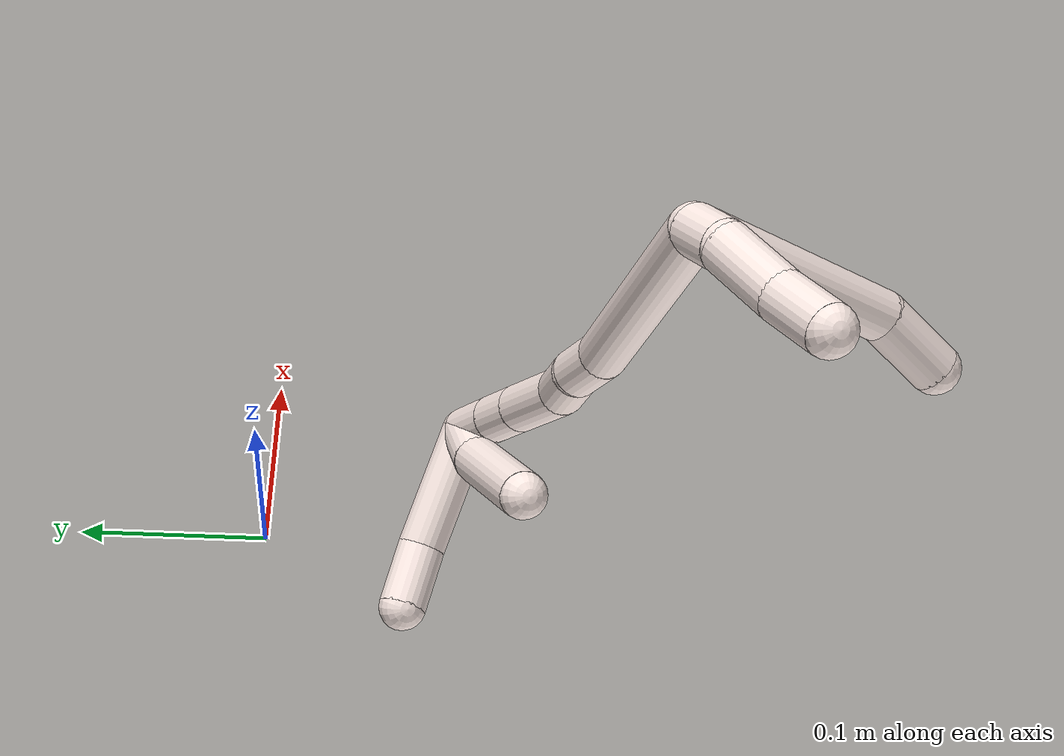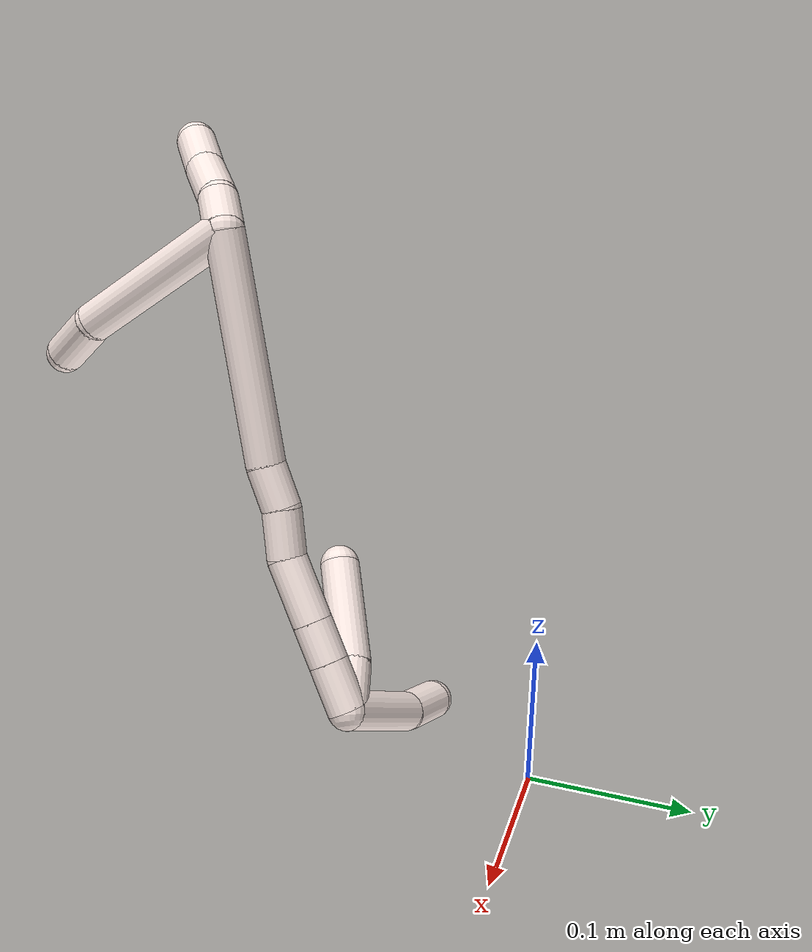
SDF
<sdf version="1.7">
 <world name="default">
  <model name="11">
   <static>0</static>
   <link name="11">
    <collision name="collision-cylinder-e_1_2_8">
     <pose>-0.051986 0.014855 0.012905 -0.855506 -1.20895 0.610147</pose>
     <geometry><cylinder><radius>0.0125</radius><length>0.11117</length></cylinder></geometry>
     <surface>
      <friction><ode><mu>1.16</mu><mu2>1.16</mu2><slip1>0</slip1><slip2>0</slip2></ode></friction>
      <contact><ode><kp>1e+06</kp><kd>1</kd><max_vel>0</max_vel><min_depth>0.001</min_depth></ode></contact>
     </surface>
    </collision>
    <visual name="visual-cylinder-e_1_2_8">
     <pose>-0.051986 0.014855 0.012905 -0.855506 -1.20895 0.610147</pose>
     <geometry><cylinder><radius>0.0125</radius><length>0.11117</length></cylinder></geometry>
     <material><ambient>1 0.933333 0.909804 1</ambient></material>
    </visual>
    <collision name="collision-cylinder-e_2_8_6">
     <pose>-0.123088 0.028932 0.029112 0.23113 -1.39516 -0.193981</pose>
     <geometry><cylinder><radius>0.0125</radius><length>0.03883</length></cylinder></geometry>
     <surface>
      <friction><ode><mu>1.16</mu><mu2>1.16</mu2><slip1>0</slip1><slip2>0</slip2></ode></friction>
      <contact><ode><kp>1e+06</kp><kd>1</kd><max_vel>0</max_vel><min_depth>0.001</min_depth></ode></contact>
     </surface>
    </collision>
    <visual name="visual-cylinder-e_2_8_6">
     <pose>-0.123088 0.028932 0.029112 0.23113 -1.39516 -0.193981</pose>
     <geometry><cylinder><radius>0.0125</radius><length>0.03883</length></cylinder></geometry>
     <material><ambient>1 0.933333 0.909804 1</ambient></material>
    </visual>
    <collision name="collision-cylinder-e_1_2_9">
     <pose>-0.003966 -0.001759 -0.012379 3.00043 -0.307151 -2.28472</pose>
     <geometry><cylinder><radius>0.0125</radius><length>0.026234</length></cylinder></geometry>
     <surface>
      <friction><ode><mu>1.16</mu><mu2>1.16</mu2><slip1>0</slip1><slip2>0</slip2></ode></friction>
      <contact><ode><kp>1e+06</kp><kd>1</kd><max_vel>0</max_vel><min_depth>0.001</min_depth></ode></contact>
     </surface>
    </collision>
    <visual name="visual-cylinder-e_1_2_9">
     <pose>-0.003966 -0.001759 -0.012379 3.00043 -0.307151 -2.28472</pose>
     <geometry><cylinder><radius>0.0125</radius><length>0.026234</length></cylinder></geometry>
     <material><ambient>1 0.933333 0.909804 1</ambient></material>
    </visual>
    <collision name="collision-cylinder-e_2_9_10">
     <pose>-0.019389 -0.008194 -0.040887 2.85945 -0.598702 -2.27905</pose>
     <geometry><cylinder><radius>0.0125</radius><length>0.04066</length></cylinder></geometry>
     <surface>
      <friction><ode><mu>1.16</mu><mu2>1.16</mu2><slip1>0</slip1><slip2>0</slip2></ode></friction>
      <contact><ode><kp>1e+06</kp><kd>1</kd><max_vel>0</max_vel><min_depth>0.001</min_depth></ode></contact>
     </surface>
    </collision>
    <visual name="visual-cylinder-e_2_9_10">
     <pose>-0.019389 -0.008194 -0.040887 2.85945 -0.598702 -2.27905</pose>
     <geometry><cylinder><radius>0.0125</radius><length>0.04066</length></cylinder></geometry>
     <material><ambient>1 0.933333 0.909804 1</ambient></material>
    </visual>
    <collision name="collision-cylinder-e_3_10_5">
     <pose>-0.038518 -0.015733 -0.071403 2.94513 -0.481897 -2.37877</pose>
     <geometry><cylinder><radius>0.0125</radius><length>0.033106</length></cylinder></geometry>
     <surface>
      <friction><ode><mu>1.16</mu><mu2>1.16</mu2><slip1>0</slip1><slip2>0</slip2></ode></friction>
      <contact><ode><kp>1e+06</kp><kd>1</kd><max_vel>0</max_vel><min_depth>0.001</min_depth></ode></contact>
     </surface>
    </collision>
    <visual name="visual-cylinder-e_3_10_5">
     <pose>-0.038518 -0.015733 -0.071403 2.94513 -0.481897 -2.37877</pose>
     <geometry><cylinder><radius>0.0125</radius><length>0.033106</length></cylinder></geometry>
     <material><ambient>1 0.933333 0.909804 1</ambient></material>
    </visual>
    <collision name="collision-cylinder-e_1_2_11">
     <pose>-0.018424 -0.022152 0.065045 0.328239 -0.26196 -0.043626</pose>
     <geometry><cylinder><radius>0.0125</radius><length>0.142281</length></cylinder></geometry>
     <surface>
      <friction><ode><mu>1.16</mu><mu2>1.16</mu2><slip1>0</slip1><slip2>0</slip2></ode></friction>
      <contact><ode><kp>1e+06</kp><kd>1</kd><max_vel>0</max_vel><min_depth>0.001</min_depth></ode></contact>
     </surface>
    </collision>
    <visual name="visual-cylinder-e_1_2_11">
     <pose>-0.018424 -0.022152 0.065045 0.328239 -0.26196 -0.043626</pose>
     <geometry><cylinder><radius>0.0125</radius><length>0.142281</length></cylinder></geometry>
     <material><ambient>1 0.933333 0.909804 1</ambient></material>
    </visual>
    <collision name="collision-cylinder-e_2_11_12">
     <pose>-0.037796 -0.049589 0.143028 0.387858 -0.067785 -0.013318</pose>
     <geometry><cylinder><radius>0.0125</radius><length>0.028018</length></cylinder></geometry>
     <surface>
      <friction><ode><mu>1.16</mu><mu2>1.16</mu2><slip1>0</slip1><slip2>0</slip2></ode></friction>
      <contact><ode><kp>1e+06</kp><kd>1</kd><max_vel>0</max_vel><min_depth>0.001</min_depth></ode></contact>
     </surface>
    </collision>
    <visual name="visual-cylinder-e_2_11_12">
     <pose>-0.037796 -0.049589 0.143028 0.387858 -0.067785 -0.013318</pose>
     <geometry><cylinder><radius>0.0125</radius><length>0.028018</length></cylinder></geometry>
     <material><ambient>1 0.933333 0.909804 1</ambient></material>
    </visual>
    <collision name="collision-cylinder-e_3_12_13">
     <pose>-0.042524 -0.058204 0.170373 0.227064 -0.250243 -0.028681</pose>
     <geometry><cylinder><radius>0.0125</radius><length>0.030522</length></cylinder></geometry>
     <surface>
      <friction><ode><mu>1.16</mu><mu2>1.16</mu2><slip1>0</slip1><slip2>0</slip2></ode></friction>
      <contact><ode><kp>1e+06</kp><kd>1</kd><max_vel>0</max_vel><min_depth>0.001</min_depth></ode></contact>
     </surface>
    </collision>
    <visual name="visual-cylinder-e_3_12_13">
     <pose>-0.042524 -0.058204 0.170373 0.227064 -0.250243 -0.028681</pose>
     <geometry><cylinder><radius>0.0125</radius><length>0.030522</length></cylinder></geometry>
     <material><ambient>1 0.933333 0.909804 1</ambient></material>
    </visual>
    <collision name="collision-cylinder-e_4_13_14">
     <pose>-0.04547 -0.068461 0.204525 0.337465 0.039815 0.006783</pose>
     <geometry><cylinder><radius>0.0125</radius><length>0.041885</length></cylinder></geometry>
     <surface>
      <friction><ode><mu>1.16</mu><mu2>1.16</mu2><slip1>0</slip1><slip2>0</slip2></ode></friction>
      <contact><ode><kp>1e+06</kp><kd>1</kd><max_vel>0</max_vel><min_depth>0.001</min_depth></ode></contact>
     </surface>
    </collision>
    <visual name="visual-cylinder-e_4_13_14">
     <pose>-0.04547 -0.068461 0.204525 0.337465 0.039815 0.006783</pose>
     <geometry><cylinder><radius>0.0125</radius><length>0.041885</length></cylinder></geometry>
     <material><ambient>1 0.933333 0.909804 1</ambient></material>
    </visual>
    <collision name="collision-cylinder-e_5_14_15">
     <pose>-0.044147 -0.079783 0.236642 0.341214 0.037246 0.006417</pose>
     <geometry><cylinder><radius>0.0125</radius><length>0.026275</length></cylinder></geometry>
     <surface>
      <friction><ode><mu>1.16</mu><mu2>1.16</mu2><slip1>0</slip1><slip2>0</slip2></ode></friction>
      <contact><ode><kp>1e+06</kp><kd>1</kd><max_vel>0</max_vel><min_depth>0.001</min_depth></ode></contact>
     </surface>
    </collision>
    <visual name="visual-cylinder-e_5_14_15">
     <pose>-0.044147 -0.079783 0.236642 0.341214 0.037246 0.006417</pose>
     <geometry><cylinder><radius>0.0125</radius><length>0.026275</length></cylinder></geometry>
     <material><ambient>1 0.933333 0.909804 1</ambient></material>
    </visual>
    <collision name="collision-cylinder-e_6_15_1">
     <pose>-0.04319 -0.089442 0.263594 0.346577 0.030192 0.005285</pose>
     <geometry><cylinder><radius>0.0125</radius><length>0.031019</length></cylinder></geometry>
     <surface>
      <friction><ode><mu>1.16</mu><mu2>1.16</mu2><slip1>0</slip1><slip2>0</slip2></ode></friction>
      <contact><ode><kp>1e+06</kp><kd>1</kd><max_vel>0</max_vel><min_depth>0.001</min_depth></ode></contact>
     </surface>
    </collision>
    <visual name="visual-cylinder-e_6_15_1">
     <pose>-0.04319 -0.089442 0.263594 0.346577 0.030192 0.005285</pose>
     <geometry><cylinder><radius>0.0125</radius><length>0.031019</length></cylinder></geometry>
     <material><ambient>1 0.933333 0.909804 1</ambient></material>
    </visual>
    <collision name="collision-cylinder-e_1_1_16">
     <pose>-0.045803 -0.100686 0.263459 2.7557 -0.191601 -0.914197</pose>
     <geometry><cylinder><radius>0.0125</radius><length>0.03236</length></cylinder></geometry>
     <surface>
      <friction><ode><mu>1.16</mu><mu2>1.16</mu2><slip1>0</slip1><slip2>0</slip2></ode></friction>
      <contact><ode><kp>1e+06</kp><kd>1</kd><max_vel>0</max_vel><min_depth>0.001</min_depth></ode></contact>
     </surface>
    </collision>
    <visual name="visual-cylinder-e_1_1_16">
     <pose>-0.045803 -0.100686 0.263459 2.7557 -0.191601 -0.914197</pose>
     <geometry><cylinder><radius>0.0125</radius><length>0.03236</length></cylinder></geometry>
     <material><ambient>1 0.933333 0.909804 1</ambient></material>
    </visual>
    <collision name="collision-cylinder-e_2_16_4">
     <pose>-0.05468 -0.111025 0.21571 3.01036 -0.172244 -1.84042</pose>
     <geometry><cylinder><radius>0.0125</radius><length>0.06764</length></cylinder></geometry>
     <surface>
      <friction><ode><mu>1.16</mu><mu2>1.16</mu2><slip1>0</slip1><slip2>0</slip2></ode></friction>
      <contact><ode><kp>1e+06</kp><kd>1</kd><max_vel>0</max_vel><min_depth>0.001</min_depth></ode></contact>
     </surface>
    </collision>
    <visual name="visual-cylinder-e_2_16_4">
     <pose>-0.05468 -0.111025 0.21571 3.01036 -0.172244 -1.84042</pose>
     <geometry><cylinder><radius>0.0125</radius><length>0.06764</length></cylinder></geometry>
     <material><ambient>1 0.933333 0.909804 1</ambient></material>
    </visual>
    <collision name="collision-cylinder-e_1_1_17">
     <pose>-0.051109 -0.126539 0.277825 1.5818 -0.257625 -0.260444</pose>
     <geometry><cylinder><radius>0.0125</radius><length>0.06584</length></cylinder></geometry>
     <surface>
      <friction><ode><mu>1.16</mu><mu2>1.16</mu2><slip1>0</slip1><slip2>0</slip2></ode></friction>
      <contact><ode><kp>1e+06</kp><kd>1</kd><max_vel>0</max_vel><min_depth>0.001</min_depth></ode></contact>
     </surface>
    </collision>
    <visual name="visual-cylinder-e_1_1_17">
     <pose>-0.051109 -0.126539 0.277825 1.5818 -0.257625 -0.260444</pose>
     <geometry><cylinder><radius>0.0125</radius><length>0.06584</length></cylinder></geometry>
     <material><ambient>1 0.933333 0.909804 1</ambient></material>
    </visual>
    <collision name="collision-cylinder-e_2_17_3">
     <pose>-0.063448 -0.174428 0.2732 1.83094 -0.233454 -0.302775</pose>
     <geometry><cylinder><radius>0.0125</radius><length>0.03416</length></cylinder></geometry>
     <surface>
      <friction><ode><mu>1.16</mu><mu2>1.16</mu2><slip1>0</slip1><slip2>0</slip2></ode></friction>
      <contact><ode><kp>1e+06</kp><kd>1</kd><max_vel>0</max_vel><min_depth>0.001</min_depth></ode></contact>
     </surface>
    </collision>
    <visual name="visual-cylinder-e_2_17_3">
     <pose>-0.063448 -0.174428 0.2732 1.83094 -0.233454 -0.302775</pose>
     <geometry><cylinder><radius>0.0125</radius><length>0.03416</length></cylinder></geometry>
     <material><ambient>1 0.933333 0.909804 1</ambient></material>
    </visual>
    <collision name="collision-sphere-3">
     <pose>-0.067399 -0.190486 0.268926 0 -0 0</pose>
     <geometry><sphere><radius>0.0125</radius></sphere></geometry>
     <surface>
      <friction><ode><mu>1.16</mu><mu2>1.16</mu2><slip1>0</slip1><slip2>0</slip2></ode></friction>
      <contact><ode><kp>1e+06</kp><kd>1</kd><max_vel>0</max_vel><min_depth>0.001</min_depth></ode></contact>
     </surface>
    </collision>
    <visual name="visual-sphere-3">
     <pose>-0.067399 -0.190486 0.268926 0 -0 0</pose>
     <geometry><sphere><radius>0.0125</radius></sphere></geometry>
     <material><ambient>1 0.933333 0.909804 1</ambient></material>
    </visual>
    <collision name="collision-sphere-17">
     <pose>-0.059496 -0.158371 0.277474 0 -0 0</pose>
     <geometry><sphere><radius>0.0125</radius></sphere></geometry>
     <surface>
      <friction><ode><mu>1.16</mu><mu2>1.16</mu2><slip1>0</slip1><slip2>0</slip2></ode></friction>
      <contact><ode><kp>1e+06</kp><kd>1</kd><max_vel>0</max_vel><min_depth>0.001</min_depth></ode></contact>
     </surface>
    </collision>
    <visual name="visual-sphere-17">
     <pose>-0.059496 -0.158371 0.277474 0 -0 0</pose>
     <geometry><sphere><radius>0.0125</radius></sphere></geometry>
     <material><ambient>1 0.933333 0.909804 1</ambient></material>
    </visual>
    <collision name="collision-sphere-4">
     <pose>-0.060477 -0.115385 0.182677 0 -0 0</pose>
     <geometry><sphere><radius>0.0125</radius></sphere></geometry>
     <surface>
      <friction><ode><mu>1.16</mu><mu2>1.16</mu2><slip1>0</slip1><slip2>0</slip2></ode></friction>
      <contact><ode><kp>1e+06</kp><kd>1</kd><max_vel>0</max_vel><min_depth>0.001</min_depth></ode></contact>
     </surface>
    </collision>
    <visual name="visual-sphere-4">
     <pose>-0.060477 -0.115385 0.182677 0 -0 0</pose>
     <geometry><sphere><radius>0.0125</radius></sphere></geometry>
     <material><ambient>1 0.933333 0.909804 1</ambient></material>
    </visual>
    <collision name="collision-sphere-16">
     <pose>-0.048884 -0.106665 0.248744 0 -0 0</pose>
     <geometry><sphere><radius>0.0125</radius></sphere></geometry>
     <surface>
      <friction><ode><mu>1.16</mu><mu2>1.16</mu2><slip1>0</slip1><slip2>0</slip2></ode></friction>
      <contact><ode><kp>1e+06</kp><kd>1</kd><max_vel>0</max_vel><min_depth>0.001</min_depth></ode></contact>
     </surface>
    </collision>
    <visual name="visual-sphere-16">
     <pose>-0.048884 -0.106665 0.248744 0 -0 0</pose>
     <geometry><sphere><radius>0.0125</radius></sphere></geometry>
     <material><ambient>1 0.933333 0.909804 1</ambient></material>
    </visual>
    <collision name="collision-sphere-1">
     <pose>-0.042721 -0.094708 0.278175 0 -0 0</pose>
     <geometry><sphere><radius>0.0125</radius></sphere></geometry>
     <surface>
      <friction><ode><mu>1.16</mu><mu2>1.16</mu2><slip1>0</slip1><slip2>0</slip2></ode></friction>
      <contact><ode><kp>1e+06</kp><kd>1</kd><max_vel>0</max_vel><min_depth>0.001</min_depth></ode></contact>
     </surface>
    </collision>
    <visual name="visual-sphere-1">
     <pose>-0.042721 -0.094708 0.278175 0 -0 0</pose>
     <geometry><sphere><radius>0.0125</radius></sphere></geometry>
     <material><ambient>1 0.933333 0.909804 1</ambient></material>
    </visual>
    <collision name="collision-sphere-15">
     <pose>-0.043658 -0.084176 0.249014 0 -0 0</pose>
     <geometry><sphere><radius>0.0125</radius></sphere></geometry>
     <surface>
      <friction><ode><mu>1.16</mu><mu2>1.16</mu2><slip1>0</slip1><slip2>0</slip2></ode></friction>
      <contact><ode><kp>1e+06</kp><kd>1</kd><max_vel>0</max_vel><min_depth>0.001</min_depth></ode></contact>
     </surface>
    </collision>
    <visual name="visual-sphere-15">
     <pose>-0.043658 -0.084176 0.249014 0 -0 0</pose>
     <geometry><sphere><radius>0.0125</radius></sphere></geometry>
     <material><ambient>1 0.933333 0.909804 1</ambient></material>
    </visual>
    <collision name="collision-sphere-14">
     <pose>-0.044636 -0.07539 0.224271 0 -0 0</pose>
     <geometry><sphere><radius>0.0125</radius></sphere></geometry>
     <surface>
      <friction><ode><mu>1.16</mu><mu2>1.16</mu2><slip1>0</slip1><slip2>0</slip2></ode></friction>
      <contact><ode><kp>1e+06</kp><kd>1</kd><max_vel>0</max_vel><min_depth>0.001</min_depth></ode></contact>
     </surface>
    </collision>
    <visual name="visual-sphere-14">
     <pose>-0.044636 -0.07539 0.224271 0 -0 0</pose>
     <geometry><sphere><radius>0.0125</radius></sphere></geometry>
     <material><ambient>1 0.933333 0.909804 1</ambient></material>
    </visual>
    <collision name="collision-sphere-13">
     <pose>-0.046303 -0.061533 0.18478 0 -0 0</pose>
     <geometry><sphere><radius>0.0125</radius></sphere></geometry>
     <surface>
      <friction><ode><mu>1.16</mu><mu2>1.16</mu2><slip1>0</slip1><slip2>0</slip2></ode></friction>
      <contact><ode><kp>1e+06</kp><kd>1</kd><max_vel>0</max_vel><min_depth>0.001</min_depth></ode></contact>
     </surface>
    </collision>
    <visual name="visual-sphere-13">
     <pose>-0.046303 -0.061533 0.18478 0 -0 0</pose>
     <geometry><sphere><radius>0.0125</radius></sphere></geometry>
     <material><ambient>1 0.933333 0.909804 1</ambient></material>
    </visual>
    <collision name="collision-sphere-12">
     <pose>-0.038745 -0.054875 0.155967 0 -0 0</pose>
     <geometry><sphere><radius>0.0125</radius></sphere></geometry>
     <surface>
      <friction><ode><mu>1.16</mu><mu2>1.16</mu2><slip1>0</slip1><slip2>0</slip2></ode></friction>
      <contact><ode><kp>1e+06</kp><kd>1</kd><max_vel>0</max_vel><min_depth>0.001</min_depth></ode></contact>
     </surface>
    </collision>
    <visual name="visual-sphere-12">
     <pose>-0.038745 -0.054875 0.155967 0 -0 0</pose>
     <geometry><sphere><radius>0.0125</radius></sphere></geometry>
     <material><ambient>1 0.933333 0.909804 1</ambient></material>
    </visual>
    <collision name="collision-sphere-11">
     <pose>-0.036847 -0.044303 0.13009 0 -0 0</pose>
     <geometry><sphere><radius>0.0125</radius></sphere></geometry>
     <surface>
      <friction><ode><mu>1.16</mu><mu2>1.16</mu2><slip1>0</slip1><slip2>0</slip2></ode></friction>
      <contact><ode><kp>1e+06</kp><kd>1</kd><max_vel>0</max_vel><min_depth>0.001</min_depth></ode></contact>
     </surface>
    </collision>
    <visual name="visual-sphere-11">
     <pose>-0.036847 -0.044303 0.13009 0 -0 0</pose>
     <geometry><sphere><radius>0.0125</radius></sphere></geometry>
     <material><ambient>1 0.933333 0.909804 1</ambient></material>
    </visual>
    <collision name="collision-sphere-8">
     <pose>-0.103971 0.029709 0.02581 0 -0 0</pose>
     <geometry><sphere><radius>0.0125</radius></sphere></geometry>
     <surface>
      <friction><ode><mu>1.16</mu><mu2>1.16</mu2><slip1>0</slip1><slip2>0</slip2></ode></friction>
      <contact><ode><kp>1e+06</kp><kd>1</kd><max_vel>0</max_vel><min_depth>0.001</min_depth></ode></contact>
     </surface>
    </collision>
    <visual name="visual-sphere-8">
     <pose>-0.103971 0.029709 0.02581 0 -0 0</pose>
     <geometry><sphere><radius>0.0125</radius></sphere></geometry>
     <material><ambient>1 0.933333 0.909804 1</ambient></material>
    </visual>
    <collision name="collision-sphere-2">
     <geometry><sphere><radius>0.0125</radius></sphere></geometry>
     <surface>
      <friction><ode><mu>1.16</mu><mu2>1.16</mu2><slip1>0</slip1><slip2>0</slip2></ode></friction>
      <contact><ode><kp>1e+06</kp><kd>1</kd><max_vel>0</max_vel><min_depth>0.001</min_depth></ode></contact>
     </surface>
    </collision>
    <visual name="visual-sphere-2">
     <geometry><sphere><radius>0.0125</radius></sphere></geometry>
     <material><ambient>1 0.933333 0.909804 1</ambient></material>
    </visual>
    <collision name="collision-sphere-9">
     <pose>-0.007932 -0.003518 -0.024757 0 -0 0</pose>
     <geometry><sphere><radius>0.0125</radius></sphere></geometry>
     <surface>
      <friction><ode><mu>1.16</mu><mu2>1.16</mu2><slip1>0</slip1><slip2>0</slip2></ode></friction>
      <contact><ode><kp>1e+06</kp><kd>1</kd><max_vel>0</max_vel><min_depth>0.001</min_depth></ode></contact>
     </surface>
    </collision>
    <visual name="visual-sphere-9">
     <pose>-0.007932 -0.003518 -0.024757 0 -0 0</pose>
     <geometry><sphere><radius>0.0125</radius></sphere></geometry>
     <material><ambient>1 0.933333 0.909804 1</ambient></material>
    </visual>
    <collision name="collision-sphere-6">
     <pose>-0.142204 0.028155 0.032415 0 -0 0</pose>
     <geometry><sphere><radius>0.0125</radius></sphere></geometry>
     <surface>
      <friction><ode><mu>1.16</mu><mu2>1.16</mu2><slip1>0</slip1><slip2>0</slip2></ode></friction>
      <contact><ode><kp>1e+06</kp><kd>1</kd><max_vel>0</max_vel><min_depth>0.001</min_depth></ode></contact>
     </surface>
    </collision>
    <visual name="visual-sphere-6">
     <pose>-0.142204 0.028155 0.032415 0 -0 0</pose>
     <geometry><sphere><radius>0.0125</radius></sphere></geometry>
     <material><ambient>1 0.933333 0.909804 1</ambient></material>
    </visual>
    <collision name="collision-sphere-10">
     <pose>-0.030847 -0.01287 -0.057018 0 -0 0</pose>
     <geometry><sphere><radius>0.0125</radius></sphere></geometry>
     <surface>
      <friction><ode><mu>1.16</mu><mu2>1.16</mu2><slip1>0</slip1><slip2>0</slip2></ode></friction>
      <contact><ode><kp>1e+06</kp><kd>1</kd><max_vel>0</max_vel><min_depth>0.001</min_depth></ode></contact>
     </surface>
    </collision>
    <visual name="visual-sphere-10">
     <pose>-0.030847 -0.01287 -0.057018 0 -0 0</pose>
     <geometry><sphere><radius>0.0125</radius></sphere></geometry>
     <material><ambient>1 0.933333 0.909804 1</ambient></material>
    </visual>
    <collision name="collision-sphere-5">
     <pose>-0.04619 -0.018596 -0.085789 0 -0 0</pose>
     <geometry><sphere><radius>0.0125</radius></sphere></geometry>
     <surface>
      <friction><ode><mu>1.16</mu><mu2>1.16</mu2><slip1>0</slip1><slip2>0</slip2></ode></friction>
      <contact><ode><kp>1e+06</kp><kd>1</kd><max_vel>0</max_vel><min_depth>0.001</min_depth></ode></contact>
     </surface>
    </collision>
    <visual name="visual-sphere-5">
     <pose>-0.04619 -0.018596 -0.085789 0 -0 0</pose>
     <geometry><sphere><radius>0.0125</radius></sphere></geometry>
     <material><ambient>1 0.933333 0.909804 1</ambient></material>
    </visual>
    <inertial>
     <pose>-0.043762 -0.049652 0.120503 0 -0 0</pose>
     <mass>0.75</mass>
     <inertia>
      <ixx>0.000254</ixx>
      <ixy>0</ixy>
      <ixz>0</ixz>
      <iyy>0.000339</iyy>
      <iyz>0</iyz>
      <izz>0.000301</izz>
     </inertia>
    </inertial>
   </link>
   <pose>-0.04169 -0.209483 0.319779 2.68196 -0.583124 1.21484</pose>
  </model>
 </world>
</sdf>
